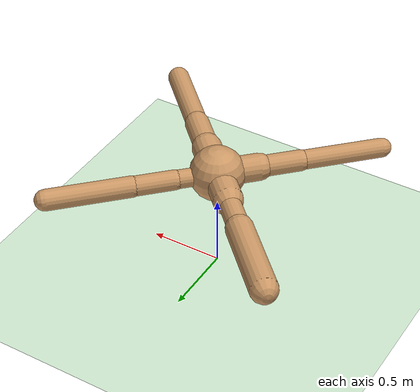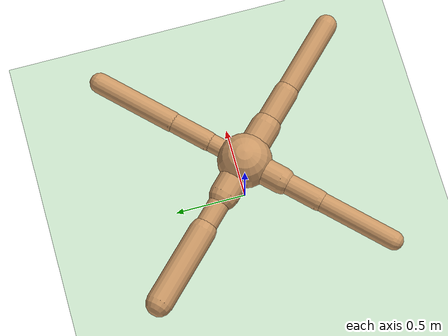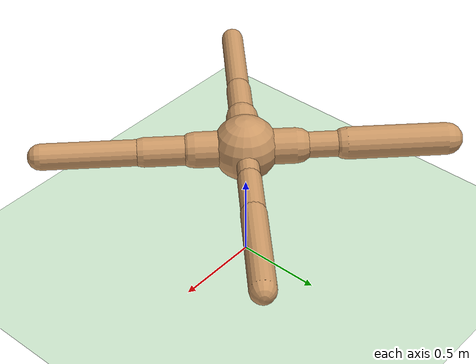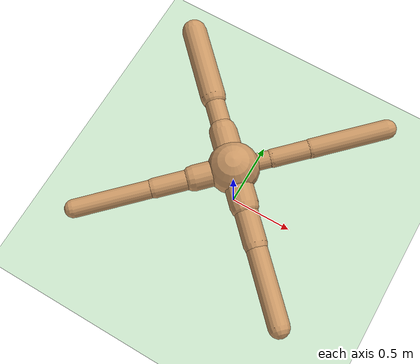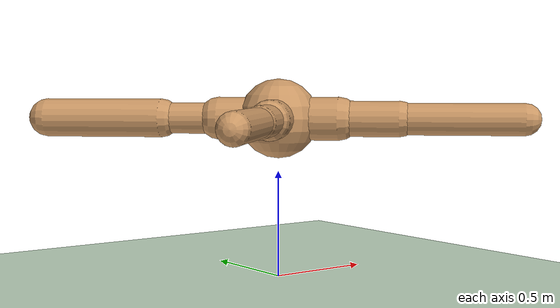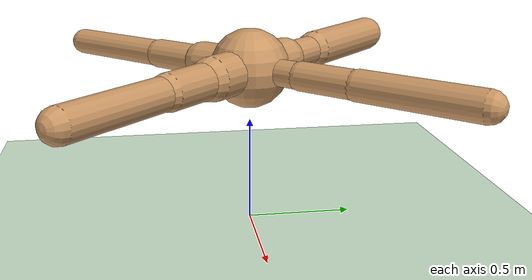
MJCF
<?xml version="1.0" encoding="utf-8"?>
<mujoco model="ant">
	<compiler angle="degree" coordinate="local" inertiafromgeom="true"></compiler>
	<option integrator="RK4" timestep="0.01"></option>
	<custom>
		<numeric data="0.0 0.0 0.55 1.0 0.0 0.0 0.0 0.0 1.0 0.0 -1.0 0.0 -1.0 0.0 1.0" name="init_qpos"></numeric>
	</custom>
	<default>
		<joint armature="1" damping="1.0050729143404393" limited="true"></joint>
		<geom conaffinity="0" condim="3" density="5.0" friction="0.9524942837902574 0.4046940116558597 0.5530897209658088" margin="0.01" rgba="0.8 0.6 0.4 1"></geom>
	</default>
	<asset>
		<texture builtin="gradient" height="100" rgb1="1 1 1" rgb2="0 0 0" type="skybox" width="100"></texture>
		<texture builtin="flat" height="1278" mark="cross" markrgb="1 1 1" name="texgeom" random="0.01" rgb1="0.8 0.6 0.4" rgb2="0.8 0.6 0.4" type="cube" width="127"></texture>
		<texture builtin="checker" height="100" name="texplane" rgb1="0 0 0" rgb2="0.8 0.8 0.8" type="2d" width="100"></texture>
		<material name="MatPlane" reflectance="0.5" shininess="1" specular="1" texrepeat="60 60" texture="texplane"></material>
		<material name="geom" texture="texgeom" texuniform="true"></material>
	</asset>
	<worldbody>
		<light cutoff="100" diffuse="1 1 1" dir="-0 0 -1.3" directional="true" exponent="1" pos="0 0 1.3" specular=".1 .1 .1"></light>
		<geom conaffinity="1" condim="3" material="MatPlane" name="floor" pos="0 0 0" rgba="0.8 0.9 0.8 1" size="42.41073274854263 41.155422322094736 32.703617346606684" type="plane"></geom>
		<body name="torso" pos="0 0 0.75">
			<camera name="track" mode="trackcom" pos="0 -3 0.3" xyaxes="1 0 0 0 0 1"></camera>
			<geom name="torso_geom" pos="0 0 0" size="0.18670134973718525" type="sphere"></geom>
			<joint armature="0" damping="0.0" limited="false" margin="0.01" name="root" pos="0 0 0" type="free"></joint>
			<body name="front_left_leg" pos="0 0 0">
				<geom fromto="0.0 0.0 0.0 0.2 0.2 0.0" name="aux_1_geom" size="0.06290905088705491" type="capsule"></geom>
				<body name="aux_1" pos="0.2 0.2 0">
					<joint axis="0 0 1" name="hip_1" pos="0.0 0.0 0.0" range="-30 30" type="hinge"></joint>
					<geom fromto="0.0 0.0 0.0 0.2 0.2 0.0" name="left_leg_geom" size="0.0675568587502408" type="capsule"></geom>
					<body pos="0.2 0.2 0">
						<joint axis="-1 1 0" name="ankle_1" pos="0.0 0.0 0.0" range="30 70" type="hinge"></joint>
						<geom fromto="0.0 0.0 0.0 0.4 0.4 0.0" name="left_ankle_geom" size="0.07152230317970487" type="capsule"></geom>
					</body>
				</body>
			</body>
			<body name="front_right_leg" pos="0 0 0">
				<geom fromto="0.0 0.0 0.0 -0.2 0.2 0.0" name="aux_2_geom" size="0.10142932344589595" type="capsule"></geom>
				<body name="aux_2" pos="-0.2 0.2 0">
					<joint axis="0 0 1" name="hip_2" pos="0.0 0.0 0.0" range="-30 30" type="hinge"></joint>
					<geom fromto="0.0 0.0 0.0 -0.2 0.2 0.0" name="right_leg_geom" size="0.07377401268534653" type="capsule"></geom>
					<body pos="-0.2 0.2 0">
						<joint axis="1 1 0" name="ankle_2" pos="0.0 0.0 0.0" range="-70 -30" type="hinge"></joint>
						<geom fromto="0.0 0.0 0.0 -0.4 0.4 0.0" name="right_ankle_geom" size="0.09224246688280856" type="capsule"></geom>
					</body>
				</body>
			</body>
			<body name="back_leg" pos="0 0 0">
				<geom fromto="0.0 0.0 0.0 -0.2 -0.2 0.0" name="aux_3_geom" size="0.09264556975902713" type="capsule"></geom>
				<body name="aux_3" pos="-0.2 -0.2 0">
					<joint axis="0 0 1" name="hip_3" pos="0.0 0.0 0.0" range="-30 30" type="hinge"></joint>
					<geom fromto="0.0 0.0 0.0 -0.2 -0.2 0.0" name="back_leg_geom" size="0.07224483235028004" type="capsule"></geom>
					<body pos="-0.2 -0.2 0">
						<joint axis="-1 1 0" name="ankle_3" pos="0.0 0.0 0.0" range="-70 -30" type="hinge"></joint>
						<geom fromto="0.0 0.0 0.0 -0.4 -0.4 0.0" name="third_ankle_geom" size="0.06586739278163431" type="capsule"></geom>
					</body>
				</body>
			</body>
			<body name="right_back_leg" pos="0 0 0">
				<geom fromto="0.0 0.0 0.0 0.2 -0.2 0.0" name="aux_4_geom" size="0.1023033933039241" type="capsule"></geom>
				<body name="aux_4" pos="0.2 -0.2 0">
					<joint axis="0 0 1" name="hip_4" pos="0.0 0.0 0.0" range="-30 30" type="hinge"></joint>
					<geom fromto="0.0 0.0 0.0 0.2 -0.2 0.0" name="rightback_leg_geom" size="0.08409593186668929" type="capsule"></geom>
					<body pos="0.2 -0.2 0">
						<joint axis="1 1 0" name="ankle_4" pos="0.0 0.0 0.0" range="30 70" type="hinge"></joint>
						<geom fromto="0.0 0.0 0.0 0.4 -0.4 0.0" name="fourth_ankle_geom" size="0.0749803345169996" type="capsule"></geom>
					</body>
				</body>
			</body>
		</body>
	</worldbody>
	<actuator>
		<motor ctrllimited="true" ctrlrange="-1.0 1.0" joint="hip_4" gear="150"></motor>
		<motor ctrllimited="true" ctrlrange="-1.0 1.0" joint="ankle_4" gear="150"></motor>
		<motor ctrllimited="true" ctrlrange="-1.0 1.0" joint="hip_1" gear="150"></motor>
		<motor ctrllimited="true" ctrlrange="-1.0 1.0" joint="ankle_1" gear="150"></motor>
		<motor ctrllimited="true" ctrlrange="-1.0 1.0" joint="hip_2" gear="150"></motor>
		<motor ctrllimited="true" ctrlrange="-1.0 1.0" joint="ankle_2" gear="150"></motor>
		<motor ctrllimited="true" ctrlrange="-1.0 1.0" joint="hip_3" gear="150"></motor>
		<motor ctrllimited="true" ctrlrange="-1.0 1.0" joint="ankle_3" gear="150"></motor>
	</actuator>
</mujoco>
